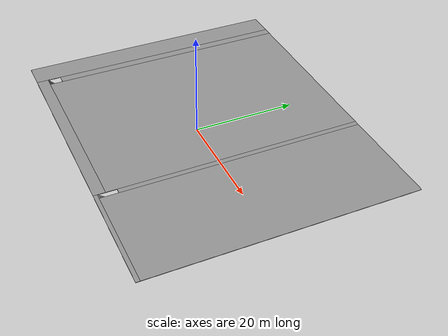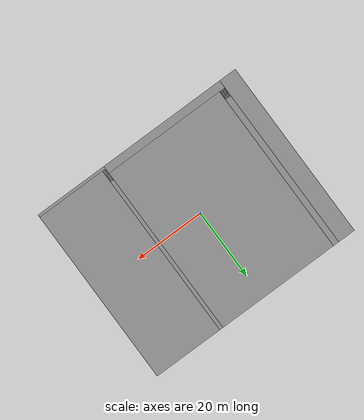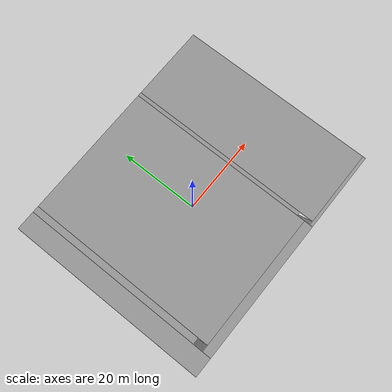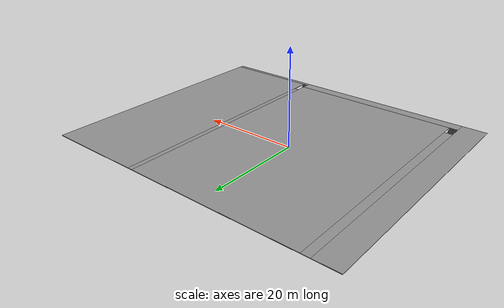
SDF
<sdf version="1.6">
 <model name="FokusFloor2-colour">
  <pose>2.32223 1.2425 0 0 -0 0</pose>
  <link name="Floor_0">
   <pose>1e-06 0 2.5 0 -0 0</pose>
   <visual name="Floor_0_Visual_0">
    <pose>-28.8524 0 0.05 0 -0 0</pose>
    <geometry><box><size>4.9433 51.2587 0.1</size></box></geometry>
    <material>
     <script><uri>file://media/materials/scripts/gazebo.material</uri><name>Gazebo/Grey</name></script>
     <ambient>1 1 1 1</ambient>
    </material>
    <meta><layer>1</layer></meta>
   </visual>
   <collision name="Floor_0_Collision_0">
    <geometry><box><size>4.9433 51.2587 0.1</size></box></geometry>
    <pose>-28.8524 0 0.05 0 -0 0</pose>
   </collision>
   <visual name="Floor_0_Visual_1">
    <pose>-7.97961 -24.5137 0.05 0 -0 0</pose>
    <geometry><box><size>36.8022 2.23126 0.1</size></box></geometry>
    <material>
     <script><uri>file://media/materials/scripts/gazebo.material</uri><name>Gazebo/Grey</name></script>
     <ambient>1 1 1 1</ambient>
    </material>
    <meta><layer>1</layer></meta>
   </visual>
   <collision name="Floor_0_Collision_1">
    <geometry><box><size>36.8022 2.23126 0.1</size></box></geometry>
    <pose>-7.97961 -24.5137 0.05 0 -0 0</pose>
   </collision>
   <visual name="Floor_0_Visual_2">
    <pose>20.8727 -25.2512 0.05 0 -0 0</pose>
    <geometry><box><size>20.9025 0.756323 0.1</size></box></geometry>
    <material>
     <script><uri>file://media/materials/scripts/gazebo.material</uri><name>Gazebo/Grey</name></script>
     <ambient>1 1 1 1</ambient>
    </material>
    <meta><layer>1</layer></meta>
   </visual>
   <collision name="Floor_0_Collision_2">
    <geometry><box><size>20.9025 0.756323 0.1</size></box></geometry>
    <pose>20.8727 -25.2512 0.05 0 -0 0</pose>
   </collision>
   <visual name="Floor_0_Visual_3">
    <pose>21.3727 0.378161 0.05 0 -0 0</pose>
    <geometry><box><size>19.9025 50.5024 0.1</size></box></geometry>
    <material>
     <script><uri>file://media/materials/scripts/gazebo.material</uri><name>Gazebo/Grey</name></script>
     <ambient>1 1 1 1</ambient>
    </material>
    <meta><layer>1</layer></meta>
   </visual>
   <collision name="Floor_0_Collision_3">
    <geometry><box><size>19.9025 50.5024 0.1</size></box></geometry>
    <pose>21.3727 0.378161 0.05 0 -0 0</pose>
   </collision>
   <visual name="Floor_0_Visual_4">
    <pose>-7.1357 1.11563 0.05 0 -0 0</pose>
    <geometry><box><size>35.1144 49.0274 0.1</size></box></geometry>
    <material>
     <script><uri>file://media/materials/scripts/gazebo.material</uri><name>Gazebo/Grey</name></script>
     <ambient>1 1 1 1</ambient>
    </material>
    <meta><layer>1</layer></meta>
   </visual>
   <collision name="Floor_0_Collision_4">
    <geometry><box><size>35.1144 49.0274 0.1</size></box></geometry>
    <pose>-7.1357 1.11563 0.05 0 -0 0</pose>
   </collision>
   <visual name="Floor_0_Visual_5">
    <pose>10.9215 2.12816 0.05 0 -0 0</pose>
    <geometry><box><size>1 47.0024 0.1</size></box></geometry>
    <material>
     <script><uri>file://media/materials/scripts/gazebo.material</uri><name>Gazebo/Grey</name></script>
     <ambient>1 1 1 1</ambient>
    </material>
    <meta><layer>1</layer></meta>
   </visual>
   <collision name="Floor_0_Collision_5">
    <geometry><box><size>1 47.0024 0.1</size></box></geometry>
    <pose>10.9215 2.12816 0.05 0 -0 0</pose>
   </collision>
   <visual name="Floor_0_Visual_6">
    <pose>-25.5368 2.3722 0.05 0 -0 0</pose>
    <geometry><box><size>1.68782 46.5143 0.1</size></box></geometry>
    <material>
     <script><uri>file://media/materials/scripts/gazebo.material</uri><name>Gazebo/Grey</name></script>
     <ambient>1 1 1 1</ambient>
    </material>
    <meta><layer>1</layer></meta>
   </visual>
   <collision name="Floor_0_Collision_6">
    <geometry><box><size>1.68782 46.5143 0.1</size></box></geometry>
    <pose>-25.5368 2.3722 0.05 0 -0 0</pose>
   </collision>
  </link>
  <link name="Stairs_0">
   <visual name="Stairs_0_Visual_0">
    <pose>10.9215 -21.4897 0.083333 0 -0 0</pose>
    <geometry><box><size>1 0.233333 0.166667</size></box></geometry>
    <material>
     <script><uri>file://media/materials/scripts/gazebo.material</uri><name>Gazebo/Grey</name></script>
     <ambient>1 1 1 1</ambient>
    </material>
    <meta><layer>0</layer></meta>
   </visual>
   <collision name="Stairs_0_Collision_0">
    <geometry><box><size>1 0.233333 0.166667</size></box></geometry>
    <pose>10.9215 -21.4897 0.083333 0 -0 0</pose>
   </collision>
   <visual name="Stairs_0_Visual_1">
    <pose>10.9215 -21.723 0.25 0 -0 0</pose>
    <geometry><box><size>1 0.233333 0.166667</size></box></geometry>
    <material>
     <script><uri>file://media/materials/scripts/gazebo.material</uri><name>Gazebo/Grey</name></script>
     <ambient>1 1 1 1</ambient>
    </material>
    <meta><layer>0</layer></meta>
   </visual>
   <collision name="Stairs_0_Collision_1">
    <geometry><box><size>1 0.233333 0.166667</size></box></geometry>
    <pose>10.9215 -21.723 0.25 0 -0 0</pose>
   </collision>
   <visual name="Stairs_0_Visual_2">
    <pose>10.9215 -21.9564 0.416667 0 -0 0</pose>
    <geometry><box><size>1 0.233333 0.166667</size></box></geometry>
    <material>
     <script><uri>file://media/materials/scripts/gazebo.material</uri><name>Gazebo/Grey</name></script>
     <ambient>1 1 1 1</ambient>
    </material>
    <meta><layer>0</layer></meta>
   </visual>
   <collision name="Stairs_0_Collision_2">
    <geometry><box><size>1 0.233333 0.166667</size></box></geometry>
    <pose>10.9215 -21.9564 0.416667 0 -0 0</pose>
   </collision>
   <visual name="Stairs_0_Visual_3">
    <pose>10.9215 -22.1897 0.583333 0 -0 0</pose>
    <geometry><box><size>1 0.233333 0.166667</size></box></geometry>
    <material>
     <script><uri>file://media/materials/scripts/gazebo.material</uri><name>Gazebo/Grey</name></script>
     <ambient>1 1 1 1</ambient>
    </material>
    <meta><layer>0</layer></meta>
   </visual>
   <collision name="Stairs_0_Collision_3">
    <geometry><box><size>1 0.233333 0.166667</size></box></geometry>
    <pose>10.9215 -22.1897 0.583333 0 -0 0</pose>
   </collision>
   <visual name="Stairs_0_Visual_4">
    <pose>10.9215 -22.423 0.75 0 -0 0</pose>
    <geometry><box><size>1 0.233333 0.166667</size></box></geometry>
    <material>
     <script><uri>file://media/materials/scripts/gazebo.material</uri><name>Gazebo/Grey</name></script>
     <ambient>1 1 1 1</ambient>
    </material>
    <meta><layer>0</layer></meta>
   </visual>
   <collision name="Stairs_0_Collision_4">
    <geometry><box><size>1 0.233333 0.166667</size></box></geometry>
    <pose>10.9215 -22.423 0.75 0 -0 0</pose>
   </collision>
   <visual name="Stairs_0_Visual_5">
    <pose>10.9215 -22.6564 0.916667 0 -0 0</pose>
    <geometry><box><size>1 0.233333 0.166667</size></box></geometry>
    <material>
     <script><uri>file://media/materials/scripts/gazebo.material</uri><name>Gazebo/Grey</name></script>
     <ambient>1 1 1 1</ambient>
    </material>
    <meta><layer>0</layer></meta>
   </visual>
   <collision name="Stairs_0_Collision_5">
    <geometry><box><size>1 0.233333 0.166667</size></box></geometry>
    <pose>10.9215 -22.6564 0.916667 0 -0 0</pose>
   </collision>
   <visual name="Stairs_0_Visual_6">
    <pose>10.9215 -22.8897 1.08333 0 -0 0</pose>
    <geometry><box><size>1 0.233333 0.166667</size></box></geometry>
    <material>
     <script><uri>file://media/materials/scripts/gazebo.material</uri><name>Gazebo/Grey</name></script>
     <ambient>1 1 1 1</ambient>
    </material>
    <meta><layer>0</layer></meta>
   </visual>
   <collision name="Stairs_0_Collision_6">
    <geometry><box><size>1 0.233333 0.166667</size></box></geometry>
    <pose>10.9215 -22.8897 1.08333 0 -0 0</pose>
   </collision>
   <visual name="Stairs_0_Visual_7">
    <pose>10.9215 -23.123 1.25 0 -0 0</pose>
    <geometry><box><size>1 0.233333 0.166667</size></box></geometry>
    <material>
     <script><uri>file://media/materials/scripts/gazebo.material</uri><name>Gazebo/Grey</name></script>
     <ambient>1 1 1 1</ambient>
    </material>
    <meta><layer>0</layer></meta>
   </visual>
   <collision name="Stairs_0_Collision_7">
    <geometry><box><size>1 0.233333 0.166667</size></box></geometry>
    <pose>10.9215 -23.123 1.25 0 -0 0</pose>
   </collision>
   <visual name="Stairs_0_Visual_8">
    <pose>10.9215 -23.3564 1.41667 0 -0 0</pose>
    <geometry><box><size>1 0.233333 0.166667</size></box></geometry>
    <material>
     <script><uri>file://media/materials/scripts/gazebo.material</uri><name>Gazebo/Grey</name></script>
     <ambient>1 1 1 1</ambient>
    </material>
    <meta><layer>0</layer></meta>
   </visual>
   <collision name="Stairs_0_Collision_8">
    <geometry><box><size>1 0.233333 0.166667</size></box></geometry>
    <pose>10.9215 -23.3564 1.41667 0 -0 0</pose>
   </collision>
   <visual name="Stairs_0_Visual_9">
    <pose>10.9215 -23.5897 1.58333 0 -0 0</pose>
    <geometry><box><size>1 0.233333 0.166667</size></box></geometry>
    <material>
     <script><uri>file://media/materials/scripts/gazebo.material</uri><name>Gazebo/Grey</name></script>
     <ambient>1 1 1 1</ambient>
    </material>
    <meta><layer>0</layer></meta>
   </visual>
   <collision name="Stairs_0_Collision_9">
    <geometry><box><size>1 0.233333 0.166667</size></box></geometry>
    <pose>10.9215 -23.5897 1.58333 0 -0 0</pose>
   </collision>
   <visual name="Stairs_0_Visual_10">
    <pose>10.9215 -23.823 1.75 0 -0 0</pose>
    <geometry><box><size>1 0.233333 0.166667</size></box></geometry>
    <material>
     <script><uri>file://media/materials/scripts/gazebo.material</uri><name>Gazebo/Grey</name></script>
     <ambient>1 1 1 1</ambient>
    </material>
    <meta><layer>0</layer></meta>
   </visual>
   <collision name="Stairs_0_Collision_10">
    <geometry><box><size>1 0.233333 0.166667</size></box></geometry>
    <pose>10.9215 -23.823 1.75 0 -0 0</pose>
   </collision>
   <visual name="Stairs_0_Visual_11">
    <pose>10.9215 -24.0564 1.91667 0 -0 0</pose>
    <geometry><box><size>1 0.233333 0.166667</size></box></geometry>
    <material>
     <script><uri>file://media/materials/scripts/gazebo.material</uri><name>Gazebo/Grey</name></script>
     <ambient>1 1 1 1</ambient>
    </material>
    <meta><layer>0</layer></meta>
   </visual>
   <collision name="Stairs_0_Collision_11">
    <geometry><box><size>1 0.233333 0.166667</size></box></geometry>
    <pose>10.9215 -24.0564 1.91667 0 -0 0</pose>
   </collision>
   <visual name="Stairs_0_Visual_12">
    <pose>10.9215 -24.2897 2.08333 0 -0 0</pose>
    <geometry><box><size>1 0.233333 0.166667</size></box></geometry>
    <material>
     <script><uri>file://media/materials/scripts/gazebo.material</uri><name>Gazebo/Grey</name></script>
     <ambient>1 1 1 1</ambient>
    </material>
    <meta><layer>0</layer></meta>
   </visual>
   <collision name="Stairs_0_Collision_12">
    <geometry><box><size>1 0.233333 0.166667</size></box></geometry>
    <pose>10.9215 -24.2897 2.08333 0 -0 0</pose>
   </collision>
   <visual name="Stairs_0_Visual_13">
    <pose>10.9215 -24.523 2.25 0 -0 0</pose>
    <geometry><box><size>1 0.233333 0.166667</size></box></geometry>
    <material>
     <script><uri>file://media/materials/scripts/gazebo.material</uri><name>Gazebo/Grey</name></script>
     <ambient>1 1 1 1</ambient>
    </material>
    <meta><layer>0</layer></meta>
   </visual>
   <collision name="Stairs_0_Collision_13">
    <geometry><box><size>1 0.233333 0.166667</size></box></geometry>
    <pose>10.9215 -24.523 2.25 0 -0 0</pose>
   </collision>
   <visual name="Stairs_0_Visual_14">
    <pose>10.9215 -24.7564 2.41667 0 -0 0</pose>
    <geometry><box><size>1 0.233333 0.166667</size></box></geometry>
    <material>
     <script><uri>file://media/materials/scripts/gazebo.material</uri><name>Gazebo/Grey</name></script>
     <ambient>1 1 1 1</ambient>
    </material>
    <meta><layer>0</layer></meta>
   </visual>
   <collision name="Stairs_0_Collision_14">
    <geometry><box><size>1 0.233333 0.166667</size></box></geometry>
    <pose>10.9215 -24.7564 2.41667 0 -0 0</pose>
   </collision>
  </link>
  <link name="Stairs_1">
   <visual name="Stairs_1_Visual_0">
    <pose>-25.5368 -20.9687 0.083333 0 -0 0</pose>
    <geometry><box><size>1.68782 0.167542 0.166667</size></box></geometry>
    <material>
     <script><uri>file://media/materials/scripts/gazebo.material</uri><name>Gazebo/Grey</name></script>
     <ambient>1 1 1 1</ambient>
    </material>
    <meta><layer>0</layer></meta>
   </visual>
   <collision name="Stairs_1_Collision_0">
    <geometry><box><size>1.68782 0.167542 0.166667</size></box></geometry>
    <pose>-25.5368 -20.9687 0.083333 0 -0 0</pose>
   </collision>
   <visual name="Stairs_1_Visual_1">
    <pose>-25.5368 -21.1363 0.25 0 -0 0</pose>
    <geometry><box><size>1.68782 0.167542 0.166667</size></box></geometry>
    <material>
     <script><uri>file://media/materials/scripts/gazebo.material</uri><name>Gazebo/Grey</name></script>
     <ambient>1 1 1 1</ambient>
    </material>
    <meta><layer>0</layer></meta>
   </visual>
   <collision name="Stairs_1_Collision_1">
    <geometry><box><size>1.68782 0.167542 0.166667</size></box></geometry>
    <pose>-25.5368 -21.1363 0.25 0 -0 0</pose>
   </collision>
   <visual name="Stairs_1_Visual_2">
    <pose>-25.5368 -21.3038 0.416667 0 -0 0</pose>
    <geometry><box><size>1.68782 0.167542 0.166667</size></box></geometry>
    <material>
     <script><uri>file://media/materials/scripts/gazebo.material</uri><name>Gazebo/Grey</name></script>
     <ambient>1 1 1 1</ambient>
    </material>
    <meta><layer>0</layer></meta>
   </visual>
   <collision name="Stairs_1_Collision_2">
    <geometry><box><size>1.68782 0.167542 0.166667</size></box></geometry>
    <pose>-25.5368 -21.3038 0.416667 0 -0 0</pose>
   </collision>
   <visual name="Stairs_1_Visual_3">
    <pose>-25.5368 -21.4714 0.583333 0 -0 0</pose>
    <geometry><box><size>1.68782 0.167542 0.166667</size></box></geometry>
    <material>
     <script><uri>file://media/materials/scripts/gazebo.material</uri><name>Gazebo/Grey</name></script>
     <ambient>1 1 1 1</ambient>
    </material>
    <meta><layer>0</layer></meta>
   </visual>
   <collision name="Stairs_1_Collision_3">
    <geometry><box><size>1.68782 0.167542 0.166667</size></box></geometry>
    <pose>-25.5368 -21.4714 0.583333 0 -0 0</pose>
   </collision>
   <visual name="Stairs_1_Visual_4">
    <pose>-25.5368 -21.6389 0.75 0 -0 0</pose>
    <geometry><box><size>1.68782 0.167542 0.166667</size></box></geometry>
    <material>
     <script><uri>file://media/materials/scripts/gazebo.material</uri><name>Gazebo/Grey</name></script>
     <ambient>1 1 1 1</ambient>
    </material>
    <meta><layer>0</layer></meta>
   </visual>
   <collision name="Stairs_1_Collision_4">
    <geometry><box><size>1.68782 0.167542 0.166667</size></box></geometry>
    <pose>-25.5368 -21.6389 0.75 0 -0 0</pose>
   </collision>
   <visual name="Stairs_1_Visual_5">
    <pose>-25.5368 -21.8064 0.916667 0 -0 0</pose>
    <geometry><box><size>1.68782 0.167542 0.166667</size></box></geometry>
    <material>
     <script><uri>file://media/materials/scripts/gazebo.material</uri><name>Gazebo/Grey</name></script>
     <ambient>1 1 1 1</ambient>
    </material>
    <meta><layer>0</layer></meta>
   </visual>
   <collision name="Stairs_1_Collision_5">
    <geometry><box><size>1.68782 0.167542 0.166667</size></box></geometry>
    <pose>-25.5368 -21.8064 0.916667 0 -0 0</pose>
   </collision>
   <visual name="Stairs_1_Visual_6">
    <pose>-25.5368 -21.974 1.08333 0 -0 0</pose>
    <geometry><box><size>1.68782 0.167542 0.166667</size></box></geometry>
    <material>
     <script><uri>file://media/materials/scripts/gazebo.material</uri><name>Gazebo/Grey</name></script>
     <ambient>1 1 1 1</ambient>
    </material>
    <meta><layer>0</layer></meta>
   </visual>
   <collision name="Stairs_1_Collision_6">
    <geometry><box><size>1.68782 0.167542 0.166667</size></box></geometry>
    <pose>-25.5368 -21.974 1.08333 0 -0 0</pose>
   </collision>
   <visual name="Stairs_1_Visual_7">
    <pose>-25.5368 -22.1415 1.25 0 -0 0</pose>
    <geometry><box><size>1.68782 0.167542 0.166667</size></box></geometry>
    <material>
     <script><uri>file://media/materials/scripts/gazebo.material</uri><name>Gazebo/Grey</name></script>
     <ambient>1 1 1 1</ambient>
    </material>
    <meta><layer>0</layer></meta>
   </visual>
   <collision name="Stairs_1_Collision_7">
    <geometry><box><size>1.68782 0.167542 0.166667</size></box></geometry>
    <pose>-25.5368 -22.1415 1.25 0 -0 0</pose>
   </collision>
   <visual name="Stairs_1_Visual_8">
    <pose>-25.5368 -22.3091 1.41667 0 -0 0</pose>
    <geometry><box><size>1.68782 0.167542 0.166667</size></box></geometry>
    <material>
     <script><uri>file://media/materials/scripts/gazebo.material</uri><name>Gazebo/Grey</name></script>
     <ambient>1 1 1 1</ambient>
    </material>
    <meta><layer>0</layer></meta>
   </visual>
   <collision name="Stairs_1_Collision_8">
    <geometry><box><size>1.68782 0.167542 0.166667</size></box></geometry>
    <pose>-25.5368 -22.3091 1.41667 0 -0 0</pose>
   </collision>
   <visual name="Stairs_1_Visual_9">
    <pose>-25.5368 -22.4766 1.58333 0 -0 0</pose>
    <geometry><box><size>1.68782 0.167542 0.166667</size></box></geometry>
    <material>
     <script><uri>file://media/materials/scripts/gazebo.material</uri><name>Gazebo/Grey</name></script>
     <ambient>1 1 1 1</ambient>
    </material>
    <meta><layer>0</layer></meta>
   </visual>
   <collision name="Stairs_1_Collision_9">
    <geometry><box><size>1.68782 0.167542 0.166667</size></box></geometry>
    <pose>-25.5368 -22.4766 1.58333 0 -0 0</pose>
   </collision>
   <visual name="Stairs_1_Visual_10">
    <pose>-25.5368 -22.6442 1.75 0 -0 0</pose>
    <geometry><box><size>1.68782 0.167542 0.166667</size></box></geometry>
    <material>
     <script><uri>file://media/materials/scripts/gazebo.material</uri><name>Gazebo/Grey</name></script>
     <ambient>1 1 1 1</ambient>
    </material>
    <meta><layer>0</layer></meta>
   </visual>
   <collision name="Stairs_1_Collision_10">
    <geometry><box><size>1.68782 0.167542 0.166667</size></box></geometry>
    <pose>-25.5368 -22.6442 1.75 0 -0 0</pose>
   </collision>
   <visual name="Stairs_1_Visual_11">
    <pose>-25.5368 -22.8117 1.91667 0 -0 0</pose>
    <geometry><box><size>1.68782 0.167542 0.166667</size></box></geometry>
    <material>
     <script><uri>file://media/materials/scripts/gazebo.material</uri><name>Gazebo/Grey</name></script>
     <ambient>1 1 1 1</ambient>
    </material>
    <meta><layer>0</layer></meta>
   </visual>
   <collision name="Stairs_1_Collision_11">
    <geometry><box><size>1.68782 0.167542 0.166667</size></box></geometry>
    <pose>-25.5368 -22.8117 1.91667 0 -0 0</pose>
   </collision>
   <visual name="Stairs_1_Visual_12">
    <pose>-25.5368 -22.9792 2.08333 0 -0 0</pose>
    <geometry><box><size>1.68782 0.167542 0.166667</size></box></geometry>
    <material>
     <script><uri>file://media/materials/scripts/gazebo.material</uri><name>Gazebo/Grey</name></script>
     <ambient>1 1 1 1</ambient>
    </material>
    <meta><layer>0</layer></meta>
   </visual>
   <collision name="Stairs_1_Collision_12">
    <geometry><box><size>1.68782 0.167542 0.166667</size></box></geometry>
    <pose>-25.5368 -22.9792 2.08333 0 -0 0</pose>
   </collision>
   <visual name="Stairs_1_Visual_13">
    <pose>-25.5368 -23.1468 2.25 0 -0 0</pose>
    <geometry><box><size>1.68782 0.167542 0.166667</size></box></geometry>
    <material>
     <script><uri>file://media/materials/scripts/gazebo.material</uri><name>Gazebo/Grey</name></script>
     <ambient>1 1 1 1</ambient>
    </material>
    <meta><layer>0</layer></meta>
   </visual>
   <collision name="Stairs_1_Collision_13">
    <geometry><box><size>1.68782 0.167542 0.166667</size></box></geometry>
    <pose>-25.5368 -23.1468 2.25 0 -0 0</pose>
   </collision>
   <visual name="Stairs_1_Visual_14">
    <pose>-25.5368 -23.3143 2.41667 0 -0 0</pose>
    <geometry><box><size>1.68782 0.167542 0.166667</size></box></geometry>
    <material>
     <script><uri>file://media/materials/scripts/gazebo.material</uri><name>Gazebo/Grey</name></script>
     <ambient>1 1 1 1</ambient>
    </material>
    <meta><layer>0</layer></meta>
   </visual>
   <collision name="Stairs_1_Collision_14">
    <geometry><box><size>1.68782 0.167542 0.166667</size></box></geometry>
    <pose>-25.5368 -23.3143 2.41667 0 -0 0</pose>
   </collision>
  </link>
  <static>1</static>
 </model>
</sdf>
